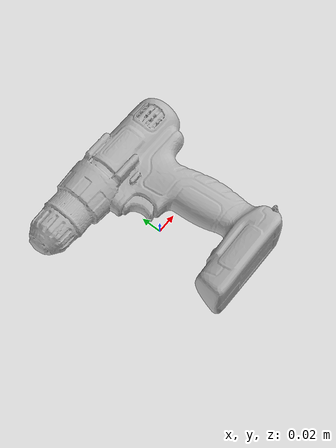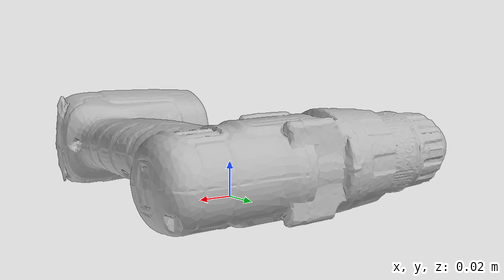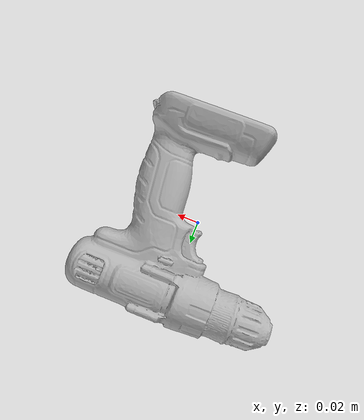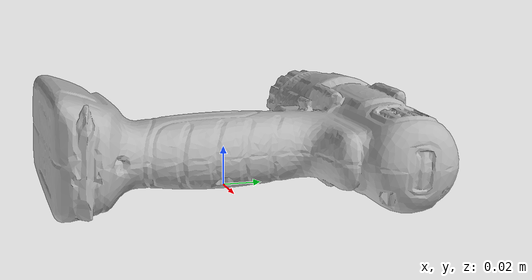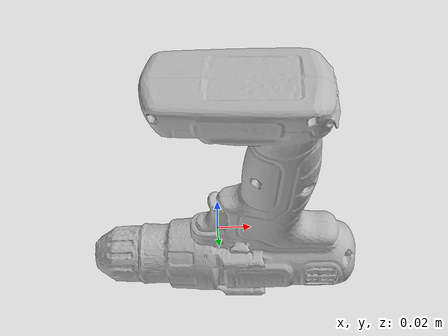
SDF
<?xml version="1.0" ?>
<sdf version='1.8'>
  <model name='ycb_035_power_drill'>
    <link name='body'>
      <inertial>
        <mass>0.895</mass>
        <pose>0.0155993087 0.0135848456 0.027386634 0 0 0</pose>
        <inertia>
          <ixx>0.0035697177387</ixx>
          <ixy>0.000368078951081</ixy>
          <ixz>2.83382913675e-05</ixz>
          <iyy>0.0014562028131</iyy>
          <iyz>7.2244533946e-05</iyz>
          <izz>0.00478248258153</izz>
        </inertia>
      </inertial>
      <visual name='ycb_035_power_drill_visual'>
        <pose>0.046314 -0.010766 0.003819 0 0 0</pose>
        <geometry>
          <mesh>
            <uri>model://ycb_035_power_drill/meshes/textured.dae</uri>
          </mesh>
        </geometry>
      </visual>
      <collision name='ycb_035_power_drill_collision'>
        <pose>0.046314 -0.010766 0.003819 0 0 0</pose>
        <geometry>
          <mesh>
            <uri>model://ycb_035_power_drill/meshes/nontextured.stl</uri>
          </mesh>
        </geometry>
        <max_contacts>10</max_contacts>
        <surface>
          <contact>
            <ode>
              <kp>1e15</kp>
              <kd>1e13</kd>
            </ode>
          </contact>
        </surface>
      </collision>
    </link>
  </model>
</sdf>
